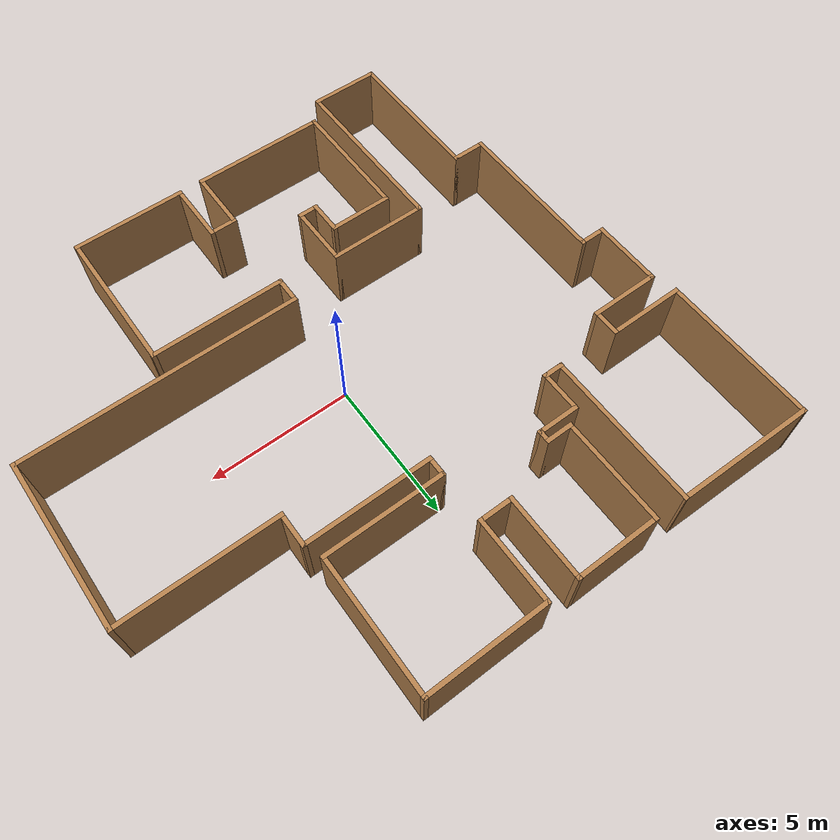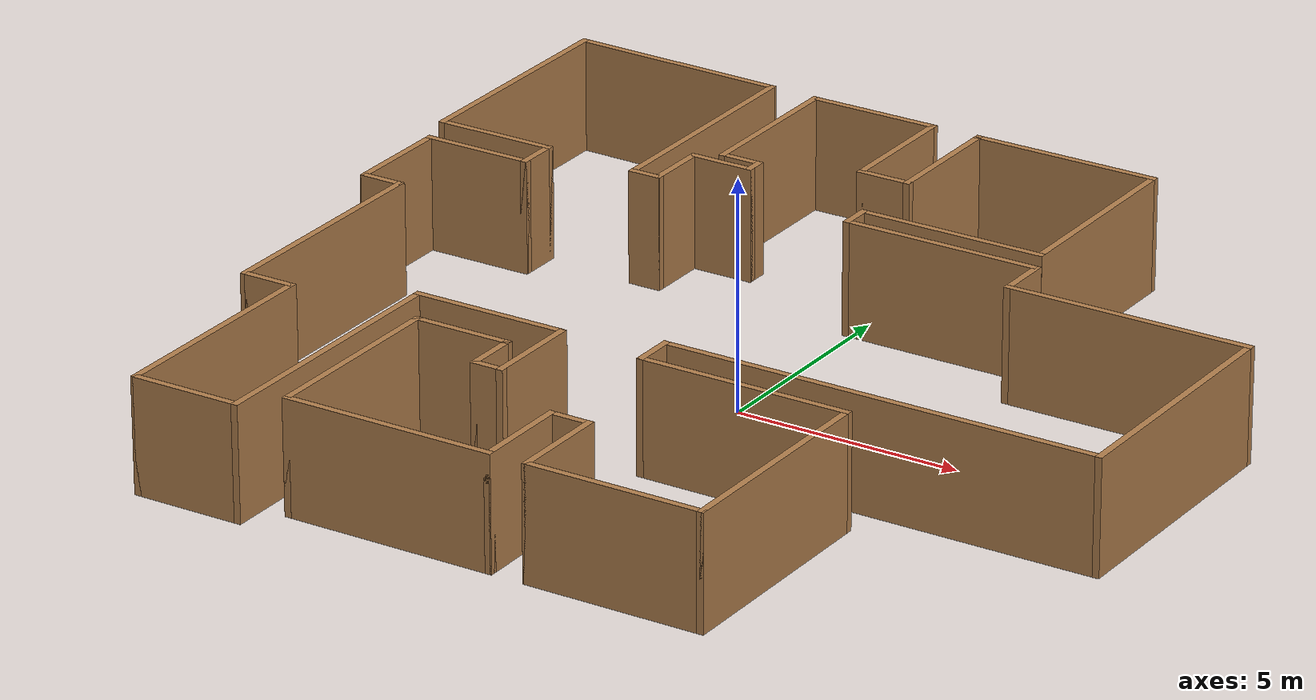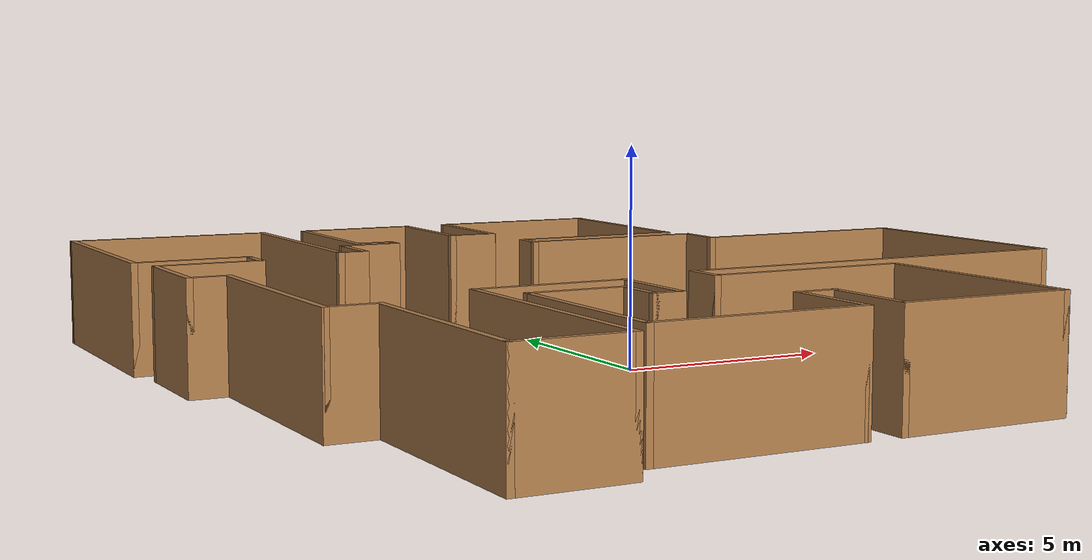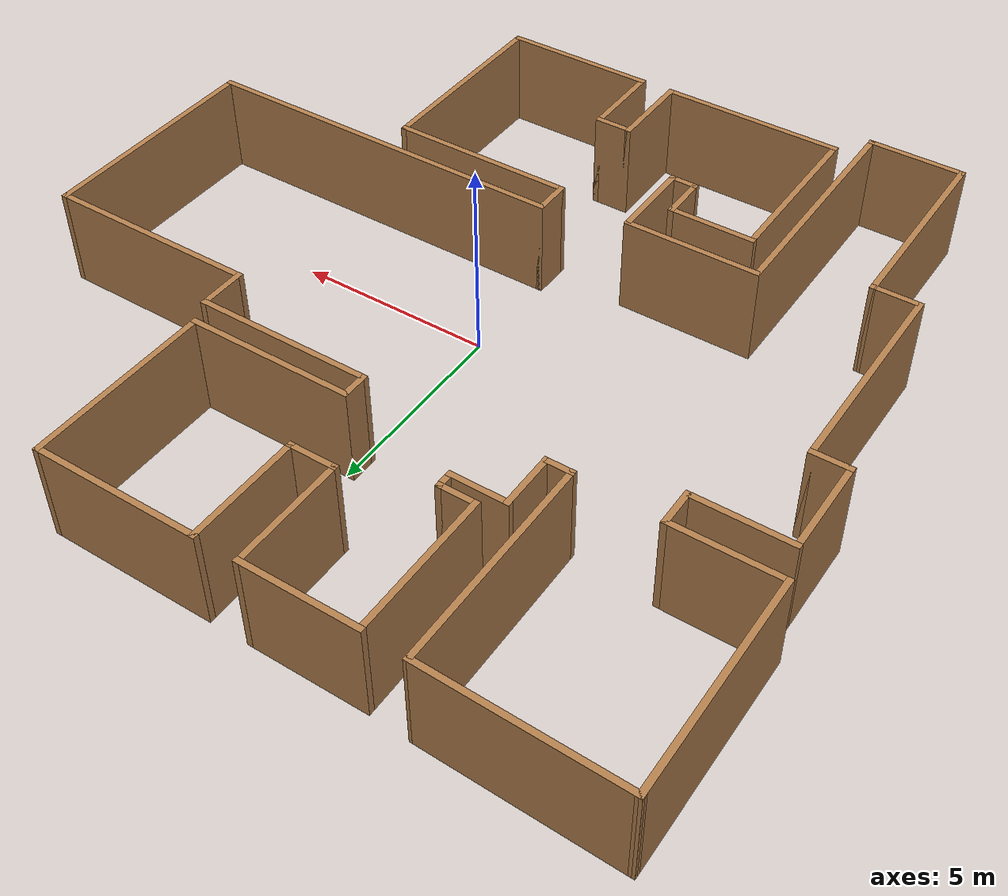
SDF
<?xml version='1.0'?>
<sdf version='1.6'>
  <model name='map_140'>
    <pose frame=''>-0.180736 0.201498 0 0 -0 0</pose>
    <link name='Wall_10'>
      <collision name='Wall_10_Collision'>
        <geometry>
          <box>
            <size>2.5 0.15 2.5</size>
          </box>
        </geometry>
        <pose frame=''>0 0 1.25 0 -0 0</pose>
      </collision>
      <visual name='Wall_10_Visual'>
        <pose frame=''>0 0 1.25 0 -0 0</pose>
        <geometry>
          <box>
            <size>2.5 0.15 2.5</size>
          </box>
        </geometry>
        <material>
          <script>
            <uri>file://media/materials/scripts/gazebo.material</uri>
            <name>Gazebo/Wood</name>
          </script>
          <ambient>1 1 1 1</ambient>
        </material>
        <meta>
          <layer>0</layer>
        </meta>
      </visual>
      <pose frame=''>-9.49922 2.12422 0 0 -0 -1.5708</pose>
    </link>
    <link name='Wall_11'>
      <collision name='Wall_11_Collision'>
        <geometry>
          <box>
            <size>1 0.15 2.5</size>
          </box>
        </geometry>
        <pose frame=''>0 0 1.25 0 -0 0</pose>
      </collision>
      <visual name='Wall_11_Visual'>
        <pose frame=''>0 0 1.25 0 -0 0</pose>
        <geometry>
          <box>
            <size>1 0.15 2.5</size>
          </box>
        </geometry>
        <material>
          <script>
            <uri>file://media/materials/scripts/gazebo.material</uri>
            <name>Gazebo/Wood</name>
          </script>
          <ambient>1 1 1 1</ambient>
        </material>
        <meta>
          <layer>0</layer>
        </meta>
      </visual>
      <pose frame=''>-9.07422 0.949219 0 0 -0 0</pose>
    </link>
    <link name='Wall_12'>
      <collision name='Wall_12_Collision'>
        <geometry>
          <box>
            <size>5.5 0.15 2.5</size>
          </box>
        </geometry>
        <pose frame=''>0 0 1.25 0 -0 0</pose>
      </collision>
      <visual name='Wall_12_Visual'>
        <pose frame=''>0 0 1.25 0 -0 0</pose>
        <geometry>
          <box>
            <size>5.5 0.15 2.5</size>
          </box>
        </geometry>
        <material>
          <script>
            <uri>file://media/materials/scripts/gazebo.material</uri>
            <name>Gazebo/Wood</name>
          </script>
          <ambient>1 1 1 1</ambient>
        </material>
        <meta>
          <layer>0</layer>
        </meta>
      </visual>
      <pose frame=''>-8.64922 -1.72578 0 0 -0 -1.5708</pose>
    </link>
    <link name='Wall_13'>
      <collision name='Wall_13_Collision'>
        <geometry>
          <box>
            <size>1.25 0.15 2.5</size>
          </box>
        </geometry>
        <pose frame=''>0 0 1.25 0 -0 0</pose>
      </collision>
      <visual name='Wall_13_Visual'>
        <pose frame=''>0 0 1.25 0 -0 0</pose>
        <geometry>
          <box>
            <size>1.25 0.15 2.5</size>
          </box>
        </geometry>
        <material>
          <script>
            <uri>file://media/materials/scripts/gazebo.material</uri>
            <name>Gazebo/Wood</name>
          </script>
          <ambient>1 1 1 1</ambient>
        </material>
        <meta>
          <layer>0</layer>
        </meta>
      </visual>
      <pose frame=''>-8.09922 -4.40078 0 0 -0 0</pose>
    </link>
    <link name='Wall_14'>
      <collision name='Wall_14_Collision'>
        <geometry>
          <box>
            <size>5.25 0.15 2.5</size>
          </box>
        </geometry>
        <pose frame=''>0 0 1.25 0 -0 0</pose>
      </collision>
      <visual name='Wall_14_Visual'>
        <pose frame=''>0 0 1.25 0 -0 0</pose>
        <geometry>
          <box>
            <size>5.25 0.15 2.5</size>
          </box>
        </geometry>
        <material>
          <script>
            <uri>file://media/materials/scripts/gazebo.material</uri>
            <name>Gazebo/Wood</name>
          </script>
          <ambient>1 1 1 1</ambient>
        </material>
        <meta>
          <layer>0</layer>
        </meta>
      </visual>
      <pose frame=''>-7.54922 -6.95078 0 0 -0 -1.5708</pose>
    </link>
    <link name='Wall_15'>
      <collision name='Wall_15_Collision'>
        <geometry>
          <box>
            <size>2.5 0.15 2.5</size>
          </box>
        </geometry>
        <pose frame=''>0 0 1.25 0 -0 0</pose>
      </collision>
      <visual name='Wall_15_Visual'>
        <pose frame=''>0 0 1.25 0 -0 0</pose>
        <geometry>
          <box>
            <size>2.5 0.15 2.5</size>
          </box>
        </geometry>
        <material>
          <script>
            <uri>file://media/materials/scripts/gazebo.material</uri>
            <name>Gazebo/Wood</name>
          </script>
          <ambient>1 1 1 1</ambient>
        </material>
        <meta>
          <layer>0</layer>
        </meta>
      </visual>
      <pose frame=''>-6.37422 -9.50078 0 0 -0 0</pose>
    </link>
    <link name='Wall_18'>
      <collision name='Wall_18_Collision'>
        <geometry>
          <box>
            <size>6.25 0.15 2.5</size>
          </box>
        </geometry>
        <pose frame=''>0 0 1.25 0 -0 0</pose>
      </collision>
      <visual name='Wall_18_Visual'>
        <pose frame=''>0 0 1.25 0 -0 0</pose>
        <geometry>
          <box>
            <size>6.25 0.15 2.5</size>
          </box>
        </geometry>
        <material>
          <script>
            <uri>file://media/materials/scripts/gazebo.material</uri>
            <name>Gazebo/Wood</name>
          </script>
          <ambient>1 1 1 1</ambient>
        </material>
        <meta>
          <layer>0</layer>
        </meta>
      </visual>
      <pose frame=''>-5.19922 -6.45078 0 0 -0 1.5708</pose>
    </link>
    <link name='Wall_21'>
      <collision name='Wall_21_Collision'>
        <geometry>
          <box>
            <size>3.5 0.15 2.5</size>
          </box>
        </geometry>
        <pose frame=''>0 0 1.25 0 -0 0</pose>
      </collision>
      <visual name='Wall_21_Visual'>
        <pose frame=''>0 0 1.25 0 -0 0</pose>
        <geometry>
          <box>
            <size>3.5 0.15 2.5</size>
          </box>
        </geometry>
        <material>
          <script>
            <uri>file://media/materials/scripts/gazebo.material</uri>
            <name>Gazebo/Wood</name>
          </script>
          <ambient>1 1 1 1</ambient>
        </material>
        <meta>
          <layer>0</layer>
        </meta>
      </visual>
      <pose frame=''>-3.52422 -3.40078 0 0 -0 0</pose>
    </link>
    <link name='Wall_22'>
      <collision name='Wall_22_Collision'>
        <geometry>
          <box>
            <size>2.25 0.15 2.5</size>
          </box>
        </geometry>
        <pose frame=''>0 0 1.25 0 -0 0</pose>
      </collision>
      <visual name='Wall_22_Visual'>
        <pose frame=''>0 0 1.25 0 -0 0</pose>
        <geometry>
          <box>
            <size>2.25 0.15 2.5</size>
          </box>
        </geometry>
        <material>
          <script>
            <uri>file://media/materials/scripts/gazebo.material</uri>
            <name>Gazebo/Wood</name>
          </script>
          <ambient>1 1 1 1</ambient>
        </material>
        <meta>
          <layer>0</layer>
        </meta>
      </visual>
      <pose frame=''>-1.84922 -4.45078 0 0 -0 -1.5708</pose>
    </link>
    <link name='Wall_23'>
      <collision name='Wall_23_Collision'>
        <geometry>
          <box>
            <size>0.75 0.15 2.5</size>
          </box>
        </geometry>
        <pose frame=''>0 0 1.25 0 -0 0</pose>
      </collision>
      <visual name='Wall_23_Visual'>
        <pose frame=''>0 0 1.25 0 -0 0</pose>
        <geometry>
          <box>
            <size>0.75 0.15 2.5</size>
          </box>
        </geometry>
        <material>
          <script>
            <uri>file://media/materials/scripts/gazebo.material</uri>
            <name>Gazebo/Wood</name>
          </script>
          <ambient>1 1 1 1</ambient>
        </material>
        <meta>
          <layer>0</layer>
        </meta>
      </visual>
      <pose frame=''>-2.14922 -5.50078 0 0 -0 3.14159</pose>
    </link>
    <link name='Wall_24'>
      <collision name='Wall_24_Collision'>
        <geometry>
          <box>
            <size>1.25 0.15 2.5</size>
          </box>
        </geometry>
        <pose frame=''>0 0 1.25 0 -0 0</pose>
      </collision>
      <visual name='Wall_24_Visual'>
        <pose frame=''>0 0 1.25 0 -0 0</pose>
        <geometry>
          <box>
            <size>1.25 0.15 2.5</size>
          </box>
        </geometry>
        <material>
          <script>
            <uri>file://media/materials/scripts/gazebo.material</uri>
            <name>Gazebo/Wood</name>
          </script>
          <ambient>1 1 1 1</ambient>
        </material>
        <meta>
          <layer>0</layer>
        </meta>
      </visual>
      <pose frame=''>-2.44922 -4.95078 0 0 -0 1.5708</pose>
    </link>
    <link name='Wall_25'>
      <collision name='Wall_25_Collision'>
        <geometry>
          <box>
            <size>2.25 0.15 2.5</size>
          </box>
        </geometry>
        <pose frame=''>0 0 1.25 0 -0 0</pose>
      </collision>
      <visual name='Wall_25_Visual'>
        <pose frame=''>0 0 1.25 0 -0 0</pose>
        <geometry>
          <box>
            <size>2.25 0.15 2.5</size>
          </box>
        </geometry>
        <material>
          <script>
            <uri>file://media/materials/scripts/gazebo.material</uri>
            <name>Gazebo/Wood</name>
          </script>
          <ambient>1 1 1 1</ambient>
        </material>
        <meta>
          <layer>0</layer>
        </meta>
      </visual>
      <pose frame=''>-3.49922 -4.40078 0 0 -0 3.14159</pose>
    </link>
    <link name='Wall_26'>
      <collision name='Wall_26_Collision'>
        <geometry>
          <box>
            <size>4.5 0.15 2.5</size>
          </box>
        </geometry>
        <pose frame=''>0 0 1.25 0 -0 0</pose>
      </collision>
      <visual name='Wall_26_Visual'>
        <pose frame=''>0 0 1.25 0 -0 0</pose>
        <geometry>
          <box>
            <size>4.5 0.15 2.5</size>
          </box>
        </geometry>
        <material>
          <script>
            <uri>file://media/materials/scripts/gazebo.material</uri>
            <name>Gazebo/Wood</name>
          </script>
          <ambient>1 1 1 1</ambient>
        </material>
        <meta>
          <layer>0</layer>
        </meta>
      </visual>
      <pose frame=''>-4.54922 -6.57578 0 0 -0 -1.5708</pose>
    </link>
    <link name='Wall_27'>
      <collision name='Wall_27_Collision'>
        <geometry>
          <box>
            <size>4.75 0.15 2.5</size>
          </box>
        </geometry>
        <pose frame=''>0 0 1.25 0 -0 0</pose>
      </collision>
      <visual name='Wall_27_Visual'>
        <pose frame=''>0 0 1.25 0 -0 0</pose>
        <geometry>
          <box>
            <size>4.75 0.15 2.5</size>
          </box>
        </geometry>
        <material>
          <script>
            <uri>file://media/materials/scripts/gazebo.material</uri>
            <name>Gazebo/Wood</name>
          </script>
          <ambient>1 1 1 1</ambient>
        </material>
        <meta>
          <layer>0</layer>
        </meta>
      </visual>
      <pose frame=''>-2.24922 -8.75078 0 0 -0 0</pose>
    </link>
    <link name='Wall_28'>
      <collision name='Wall_28_Collision'>
        <geometry>
          <box>
            <size>2.25 0.15 2.5</size>
          </box>
        </geometry>
        <pose frame=''>0 0 1.25 0 -0 0</pose>
      </collision>
      <visual name='Wall_28_Visual'>
        <pose frame=''>0 0 1.25 0 -0 0</pose>
        <geometry>
          <box>
            <size>2.25 0.15 2.5</size>
          </box>
        </geometry>
        <material>
          <script>
            <uri>file://media/materials/scripts/gazebo.material</uri>
            <name>Gazebo/Wood</name>
          </script>
          <ambient>1 1 1 1</ambient>
        </material>
        <meta>
          <layer>0</layer>
        </meta>
      </visual>
      <pose frame=''>0.05078 -7.70078 0 0 -0 1.5708</pose>
    </link>
    <link name='Wall_29'>
      <collision name='Wall_29_Collision'>
        <geometry>
          <box>
            <size>1 0.15 2.5</size>
          </box>
        </geometry>
        <pose frame=''>0 0 1.25 0 -0 0</pose>
      </collision>
      <visual name='Wall_29_Visual'>
        <pose frame=''>0 0 1.25 0 -0 0</pose>
        <geometry>
          <box>
            <size>1 0.15 2.5</size>
          </box>
        </geometry>
        <material>
          <script>
            <uri>file://media/materials/scripts/gazebo.material</uri>
            <name>Gazebo/Wood</name>
          </script>
          <ambient>1 1 1 1</ambient>
        </material>
        <meta>
          <layer>0</layer>
        </meta>
      </visual>
      <pose frame=''>0.47578 -6.65078 0 0 -0 0</pose>
    </link>
    <link name='Wall_30'>
      <collision name='Wall_30_Collision'>
        <geometry>
          <box>
            <size>2.25 0.15 2.5</size>
          </box>
        </geometry>
        <pose frame=''>0 0 1.25 0 -0 0</pose>
      </collision>
      <visual name='Wall_30_Visual'>
        <pose frame=''>0 0 1.25 0 -0 0</pose>
        <geometry>
          <box>
            <size>2.25 0.15 2.5</size>
          </box>
        </geometry>
        <material>
          <script>
            <uri>file://media/materials/scripts/gazebo.material</uri>
            <name>Gazebo/Wood</name>
          </script>
          <ambient>1 1 1 1</ambient>
        </material>
        <meta>
          <layer>0</layer>
        </meta>
      </visual>
      <pose frame=''>0.90078 -7.70078 0 0 -0 -1.5708</pose>
    </link>
    <link name='Wall_31'>
      <collision name='Wall_31_Collision'>
        <geometry>
          <box>
            <size>4 0.15 2.5</size>
          </box>
        </geometry>
        <pose frame=''>0 0 1.25 0 -0 0</pose>
      </collision>
      <visual name='Wall_31_Visual'>
        <pose frame=''>0 0 1.25 0 -0 0</pose>
        <geometry>
          <box>
            <size>4 0.15 2.5</size>
          </box>
        </geometry>
        <material>
          <script>
            <uri>file://media/materials/scripts/gazebo.material</uri>
            <name>Gazebo/Wood</name>
          </script>
          <ambient>1 1 1 1</ambient>
        </material>
        <meta>
          <layer>0</layer>
        </meta>
      </visual>
      <pose frame=''>2.82578 -8.75078 0 0 -0 0</pose>
    </link>
    <link name='Wall_32'>
      <collision name='Wall_32_Collision'>
        <geometry>
          <box>
            <size>5.25 0.15 2.5</size>
          </box>
        </geometry>
        <pose frame=''>0 0 1.25 0 -0 0</pose>
      </collision>
      <visual name='Wall_32_Visual'>
        <pose frame=''>0 0 1.25 0 -0 0</pose>
        <geometry>
          <box>
            <size>5.25 0.15 2.5</size>
          </box>
        </geometry>
        <material>
          <script>
            <uri>file://media/materials/scripts/gazebo.material</uri>
            <name>Gazebo/Wood</name>
          </script>
          <ambient>1 1 1 1</ambient>
        </material>
        <meta>
          <layer>0</layer>
        </meta>
      </visual>
      <pose frame=''>4.75078 -6.20078 0 0 -0 1.5708</pose>
    </link>
    <link name='Wall_33'>
      <collision name='Wall_33_Collision'>
        <geometry>
          <box>
            <size>4.75 0.15 2.5</size>
          </box>
        </geometry>
        <pose frame=''>0 0 1.25 0 -0 0</pose>
      </collision>
      <visual name='Wall_33_Visual'>
        <pose frame=''>0 0 1.25 0 -0 0</pose>
        <geometry>
          <box>
            <size>4.75 0.15 2.5</size>
          </box>
        </geometry>
        <material>
          <script>
            <uri>file://media/materials/scripts/gazebo.material</uri>
            <name>Gazebo/Wood</name>
          </script>
          <ambient>1 1 1 1</ambient>
        </material>
        <meta>
          <layer>0</layer>
        </meta>
      </visual>
      <pose frame=''>2.45078 -3.65078 0 0 -0 3.14159</pose>
    </link>
    <link name='Wall_34'>
      <collision name='Wall_34_Collision'>
        <geometry>
          <box>
            <size>1 0.15 2.5</size>
          </box>
        </geometry>
        <pose frame=''>0 0 1.25 0 -0 0</pose>
      </collision>
      <visual name='Wall_34_Visual'>
        <pose frame=''>0 0 1.25 0 -0 0</pose>
        <geometry>
          <box>
            <size>1 0.15 2.5</size>
          </box>
        </geometry>
        <material>
          <script>
            <uri>file://media/materials/scripts/gazebo.material</uri>
            <name>Gazebo/Wood</name>
          </script>
          <ambient>1 1 1 1</ambient>
        </material>
        <meta>
          <layer>0</layer>
        </meta>
      </visual>
      <pose frame=''>0.15078 -3.22578 0 0 -0 1.5708</pose>
    </link>
    <link name='Wall_35'>
      <collision name='Wall_35_Collision'>
        <geometry>
          <box>
            <size>9.75 0.15 2.5</size>
          </box>
        </geometry>
        <pose frame=''>0 0 1.25 0 -0 0</pose>
      </collision>
      <visual name='Wall_35_Visual'>
        <pose frame=''>0 0 1.25 0 -0 0</pose>
        <geometry>
          <box>
            <size>9.75 0.15 2.5</size>
          </box>
        </geometry>
        <material>
          <script>
            <uri>file://media/materials/scripts/gazebo.material</uri>
            <name>Gazebo/Wood</name>
          </script>
          <ambient>1 1 1 1</ambient>
        </material>
        <meta>
          <layer>0</layer>
        </meta>
      </visual>
      <pose frame=''>4.95078 -2.80078 0 0 -0 0</pose>
    </link>
    <link name='Wall_37'>
      <collision name='Wall_37_Collision'>
        <geometry>
          <box>
            <size>6 0.15 2.5</size>
          </box>
        </geometry>
        <pose frame=''>0 0 1.25 0 -0 0</pose>
      </collision>
      <visual name='Wall_37_Visual'>
        <pose frame=''>0 0 1.25 0 -0 0</pose>
        <geometry>
          <box>
            <size>6 0.15 2.5</size>
          </box>
        </geometry>
        <material>
          <script>
            <uri>file://media/materials/scripts/gazebo.material</uri>
            <name>Gazebo/Wood</name>
          </script>
          <ambient>1 1 1 1</ambient>
        </material>
        <meta>
          <layer>0</layer>
        </meta>
      </visual>
      <pose frame=''>9.75078 0.124219 0 0 -0 1.5708</pose>
    </link>
    <link name='Wall_41'>
      <collision name='Wall_41_Collision'>
        <geometry>
          <box>
            <size>5.5 0.15 2.5</size>
          </box>
        </geometry>
        <pose frame=''>0 0 1.25 0 -0 0</pose>
      </collision>
      <visual name='Wall_41_Visual'>
        <pose frame=''>0 0 1.25 0 -0 0</pose>
        <geometry>
          <box>
            <size>5.5 0.15 2.5</size>
          </box>
        </geometry>
        <material>
          <script>
            <uri>file://media/materials/scripts/gazebo.material</uri>
            <name>Gazebo/Wood</name>
          </script>
          <ambient>1 1 1 1</ambient>
        </material>
        <meta>
          <layer>0</layer>
        </meta>
      </visual>
      <pose frame=''>7.07578 3.04922 0 0 -0 3.14159</pose>
    </link>
    <link name='Wall_42'>
      <collision name='Wall_42_Collision'>
        <geometry>
          <box>
            <size>1.25 0.15 2.5</size>
          </box>
        </geometry>
        <pose frame=''>0 0 1.25 0 -0 0</pose>
      </collision>
      <visual name='Wall_42_Visual'>
        <pose frame=''>0 0 1.25 0 -0 0</pose>
        <geometry>
          <box>
            <size>1.25 0.15 2.5</size>
          </box>
        </geometry>
        <material>
          <script>
            <uri>file://media/materials/scripts/gazebo.material</uri>
            <name>Gazebo/Wood</name>
          </script>
          <ambient>1 1 1 1</ambient>
        </material>
        <meta>
          <layer>0</layer>
        </meta>
      </visual>
      <pose frame=''>4.40078 3.59922 0 0 -0 1.5708</pose>
    </link>
    <link name='Wall_43'>
      <collision name='Wall_43_Collision'>
        <geometry>
          <box>
            <size>4.5 0.15 2.5</size>
          </box>
        </geometry>
        <pose frame=''>0 0 1.25 0 -0 0</pose>
      </collision>
      <visual name='Wall_43_Visual'>
        <pose frame=''>0 0 1.25 0 -0 0</pose>
        <geometry>
          <box>
            <size>4.5 0.15 2.5</size>
          </box>
        </geometry>
        <material>
          <script>
            <uri>file://media/materials/scripts/gazebo.material</uri>
            <name>Gazebo/Wood</name>
          </script>
          <ambient>1 1 1 1</ambient>
        </material>
        <meta>
          <layer>0</layer>
        </meta>
      </visual>
      <pose frame=''>2.22578 4.14922 0 0 -0 3.14159</pose>
    </link>
    <link name='Wall_44'>
      <collision name='Wall_44_Collision'>
        <geometry>
          <box>
            <size>0.75 0.15 2.5</size>
          </box>
        </geometry>
        <pose frame=''>0 0 1.25 0 -0 0</pose>
      </collision>
      <visual name='Wall_44_Visual'>
        <pose frame=''>0 0 1.25 0 -0 0</pose>
        <geometry>
          <box>
            <size>0.75 0.15 2.5</size>
          </box>
        </geometry>
        <material>
          <script>
            <uri>file://media/materials/scripts/gazebo.material</uri>
            <name>Gazebo/Wood</name>
          </script>
          <ambient>1 1 1 1</ambient>
        </material>
        <meta>
          <layer>0</layer>
        </meta>
      </visual>
      <pose frame=''>0.05078 4.44922 0 0 -0 1.5708</pose>
    </link>
    <link name='Wall_45'>
      <collision name='Wall_45_Collision'>
        <geometry>
          <box>
            <size>4.25 0.15 2.5</size>
          </box>
        </geometry>
        <pose frame=''>0 0 1.25 0 -0 0</pose>
      </collision>
      <visual name='Wall_45_Visual'>
        <pose frame=''>0 0 1.25 0 -0 0</pose>
        <geometry>
          <box>
            <size>4.25 0.15 2.5</size>
          </box>
        </geometry>
        <material>
          <script>
            <uri>file://media/materials/scripts/gazebo.material</uri>
            <name>Gazebo/Wood</name>
          </script>
          <ambient>1 1 1 1</ambient>
        </material>
        <meta>
          <layer>0</layer>
        </meta>
      </visual>
      <pose frame=''>2.10078 4.74922 0 0 -0 0</pose>
    </link>
    <link name='Wall_46'>
      <collision name='Wall_46_Collision'>
        <geometry>
          <box>
            <size>4.75 0.15 2.5</size>
          </box>
        </geometry>
        <pose frame=''>0 0 1.25 0 -0 0</pose>
      </collision>
      <visual name='Wall_46_Visual'>
        <pose frame=''>0 0 1.25 0 -0 0</pose>
        <geometry>
          <box>
            <size>4.75 0.15 2.5</size>
          </box>
        </geometry>
        <material>
          <script>
            <uri>file://media/materials/scripts/gazebo.material</uri>
            <name>Gazebo/Wood</name>
          </script>
          <ambient>1 1 1 1</ambient>
        </material>
        <meta>
          <layer>0</layer>
        </meta>
      </visual>
      <pose frame=''>4.15078 7.04922 0 0 -0 1.5708</pose>
    </link>
    <link name='Wall_47'>
      <collision name='Wall_47_Collision'>
        <geometry>
          <box>
            <size>4.25 0.15 2.5</size>
          </box>
        </geometry>
        <pose frame=''>0 0 1.25 0 -0 0</pose>
      </collision>
      <visual name='Wall_47_Visual'>
        <pose frame=''>0 0 1.25 0 -0 0</pose>
        <geometry>
          <box>
            <size>4.25 0.15 2.5</size>
          </box>
        </geometry>
        <material>
          <script>
            <uri>file://media/materials/scripts/gazebo.material</uri>
            <name>Gazebo/Wood</name>
          </script>
          <ambient>1 1 1 1</ambient>
        </material>
        <meta>
          <layer>0</layer>
        </meta>
      </visual>
      <pose frame=''>2.10078 9.34922 0 0 -0 3.14159</pose>
    </link>
    <link name='Wall_48'>
      <collision name='Wall_48_Collision'>
        <geometry>
          <box>
            <size>3 0.15 2.5</size>
          </box>
        </geometry>
        <pose frame=''>0 0 1.25 0 -0 0</pose>
      </collision>
      <visual name='Wall_48_Visual'>
        <pose frame=''>0 0 1.25 0 -0 0</pose>
        <geometry>
          <box>
            <size>3 0.15 2.5</size>
          </box>
        </geometry>
        <material>
          <script>
            <uri>file://media/materials/scripts/gazebo.material</uri>
            <name>Gazebo/Wood</name>
          </script>
          <ambient>1 1 1 1</ambient>
        </material>
        <meta>
          <layer>0</layer>
        </meta>
      </visual>
      <pose frame=''>0.05078 7.92422 0 0 -0 -1.5708</pose>
    </link>
    <link name='Wall_51'>
      <collision name='Wall_51_Collision'>
        <geometry>
          <box>
            <size>1.25 0.15 2.5</size>
          </box>
        </geometry>
        <pose frame=''>0 0 1.25 0 -0 0</pose>
      </collision>
      <visual name='Wall_51_Visual'>
        <pose frame=''>0 0 1.25 0 -0 0</pose>
        <geometry>
          <box>
            <size>1.25 0.15 2.5</size>
          </box>
        </geometry>
        <material>
          <script>
            <uri>file://media/materials/scripts/gazebo.material</uri>
            <name>Gazebo/Wood</name>
          </script>
          <ambient>1 1 1 1</ambient>
        </material>
        <meta>
          <layer>0</layer>
        </meta>
      </visual>
      <pose frame=''>-0.49922 6.49922 0 0 -0 3.14159</pose>
    </link>
    <link name='Wall_52'>
      <collision name='Wall_52_Collision'>
        <geometry>
          <box>
            <size>3 0.15 2.5</size>
          </box>
        </geometry>
        <pose frame=''>0 0 1.25 0 -0 0</pose>
      </collision>
      <visual name='Wall_52_Visual'>
        <pose frame=''>0 0 1.25 0 -0 0</pose>
        <geometry>
          <box>
            <size>3 0.15 2.5</size>
          </box>
        </geometry>
        <material>
          <script>
            <uri>file://media/materials/scripts/gazebo.material</uri>
            <name>Gazebo/Wood</name>
          </script>
          <ambient>1 1 1 1</ambient>
        </material>
        <meta>
          <layer>0</layer>
        </meta>
      </visual>
      <pose frame=''>-1.04922 7.92422 0 0 -0 1.5708</pose>
    </link>
    <link name='Wall_53'>
      <collision name='Wall_53_Collision'>
        <geometry>
          <box>
            <size>3 0.15 2.5</size>
          </box>
        </geometry>
        <pose frame=''>0 0 1.25 0 -0 0</pose>
      </collision>
      <visual name='Wall_53_Visual'>
        <pose frame=''>0 0 1.25 0 -0 0</pose>
        <geometry>
          <box>
            <size>3 0.15 2.5</size>
          </box>
        </geometry>
        <material>
          <script>
            <uri>file://media/materials/scripts/gazebo.material</uri>
            <name>Gazebo/Wood</name>
          </script>
          <ambient>1 1 1 1</ambient>
        </material>
        <meta>
          <layer>0</layer>
        </meta>
      </visual>
      <pose frame=''>-2.47422 9.34922 0 0 -0 3.14159</pose>
    </link>
    <link name='Wall_54'>
      <collision name='Wall_54_Collision'>
        <geometry>
          <box>
            <size>3.75 0.15 2.5</size>
          </box>
        </geometry>
        <pose frame=''>0 0 1.25 0 -0 0</pose>
      </collision>
      <visual name='Wall_54_Visual'>
        <pose frame=''>0 0 1.25 0 -0 0</pose>
        <geometry>
          <box>
            <size>3.75 0.15 2.5</size>
          </box>
        </geometry>
        <material>
          <script>
            <uri>file://media/materials/scripts/gazebo.material</uri>
            <name>Gazebo/Wood</name>
          </script>
          <ambient>1 1 1 1</ambient>
        </material>
        <meta>
          <layer>0</layer>
        </meta>
      </visual>
      <pose frame=''>-3.89922 7.54922 0 0 -0 -1.5708</pose>
    </link>
    <link name='Wall_55'>
      <collision name='Wall_55_Collision'>
        <geometry>
          <box>
            <size>1 0.15 2.5</size>
          </box>
        </geometry>
        <pose frame=''>0 0 1.25 0 -0 0</pose>
      </collision>
      <visual name='Wall_55_Visual'>
        <pose frame=''>0 0 1.25 0 -0 0</pose>
        <geometry>
          <box>
            <size>1 0.15 2.5</size>
          </box>
        </geometry>
        <material>
          <script>
            <uri>file://media/materials/scripts/gazebo.material</uri>
            <name>Gazebo/Wood</name>
          </script>
          <ambient>1 1 1 1</ambient>
        </material>
        <meta>
          <layer>0</layer>
        </meta>
      </visual>
      <pose frame=''>-3.47422 5.74922 0 0 -0 0</pose>
    </link>
    <link name='Wall_56'>
      <collision name='Wall_56_Collision'>
        <geometry>
          <box>
            <size>0.5 0.15 2.5</size>
          </box>
        </geometry>
        <pose frame=''>0 0 1.25 0 -0 0</pose>
      </collision>
      <visual name='Wall_56_Visual'>
        <pose frame=''>0 0 1.25 0 -0 0</pose>
        <geometry>
          <box>
            <size>0.5 0.15 2.5</size>
          </box>
        </geometry>
        <material>
          <script>
            <uri>file://media/materials/scripts/gazebo.material</uri>
            <name>Gazebo/Wood</name>
          </script>
          <ambient>1 1 1 1</ambient>
        </material>
        <meta>
          <layer>0</layer>
        </meta>
      </visual>
      <pose frame=''>-3.04922 5.57422 0 0 -0 -1.5708</pose>
    </link>
    <link name='Wall_57'>
      <collision name='Wall_57_Collision'>
        <geometry>
          <box>
            <size>1.5 0.15 2.5</size>
          </box>
        </geometry>
        <pose frame=''>0 0 1.25 0 -0 0</pose>
      </collision>
      <visual name='Wall_57_Visual'>
        <pose frame=''>0 0 1.25 0 -0 0</pose>
        <geometry>
          <box>
            <size>1.5 0.15 2.5</size>
          </box>
        </geometry>
        <material>
          <script>
            <uri>file://media/materials/scripts/gazebo.material</uri>
            <name>Gazebo/Wood</name>
          </script>
          <ambient>1 1 1 1</ambient>
        </material>
        <meta>
          <layer>0</layer>
        </meta>
      </visual>
      <pose frame=''>-3.72422 5.39922 0 0 -0 3.14159</pose>
    </link>
    <link name='Wall_58'>
      <collision name='Wall_58_Collision'>
        <geometry>
          <box>
            <size>1.5 0.15 2.5</size>
          </box>
        </geometry>
        <pose frame=''>0 0 1.25 0 -0 0</pose>
      </collision>
      <visual name='Wall_58_Visual'>
        <pose frame=''>0 0 1.25 0 -0 0</pose>
        <geometry>
          <box>
            <size>1.5 0.15 2.5</size>
          </box>
        </geometry>
        <material>
          <script>
            <uri>file://media/materials/scripts/gazebo.material</uri>
            <name>Gazebo/Wood</name>
          </script>
          <ambient>1 1 1 1</ambient>
        </material>
        <meta>
          <layer>0</layer>
        </meta>
      </visual>
      <pose frame=''>-4.39922 4.72422 0 0 -0 -1.5708</pose>
    </link>
    <link name='Wall_59'>
      <collision name='Wall_59_Collision'>
        <geometry>
          <box>
            <size>0.75 0.15 2.5</size>
          </box>
        </geometry>
        <pose frame=''>0 0 1.25 0 -0 0</pose>
      </collision>
      <visual name='Wall_59_Visual'>
        <pose frame=''>0 0 1.25 0 -0 0</pose>
        <geometry>
          <box>
            <size>0.75 0.15 2.5</size>
          </box>
        </geometry>
        <material>
          <script>
            <uri>file://media/materials/scripts/gazebo.material</uri>
            <name>Gazebo/Wood</name>
          </script>
          <ambient>1 1 1 1</ambient>
        </material>
        <meta>
          <layer>0</layer>
        </meta>
      </visual>
      <pose frame=''>-4.69922 4.04922 0 0 -0 3.14159</pose>
    </link>
    <link name='Wall_6'>
      <collision name='Wall_6_Collision'>
        <geometry>
          <box>
            <size>5.5 0.15 2.5</size>
          </box>
        </geometry>
        <pose frame=''>0 0 1.25 0 -0 0</pose>
      </collision>
      <visual name='Wall_6_Visual'>
        <pose frame=''>0 0 1.25 0 -0 0</pose>
        <geometry>
          <box>
            <size>5.5 0.15 2.5</size>
          </box>
        </geometry>
        <material>
          <script>
            <uri>file://media/materials/scripts/gazebo.material</uri>
            <name>Gazebo/Wood</name>
          </script>
          <ambient>1 1 1 1</ambient>
        </material>
        <meta>
          <layer>0</layer>
        </meta>
      </visual>
      <pose frame=''>-9.74922 6.82422 0 0 -0 -1.5708</pose>
    </link>
    <link name='Wall_60'>
      <collision name='Wall_60_Collision'>
        <geometry>
          <box>
            <size>5.5 0.15 2.5</size>
          </box>
        </geometry>
        <pose frame=''>0 0 1.25 0 -0 0</pose>
      </collision>
      <visual name='Wall_60_Visual'>
        <pose frame=''>0 0 1.25 0 -0 0</pose>
        <geometry>
          <box>
            <size>5.5 0.15 2.5</size>
          </box>
        </geometry>
        <material>
          <script>
            <uri>file://media/materials/scripts/gazebo.material</uri>
            <name>Gazebo/Wood</name>
          </script>
          <ambient>1 1 1 1</ambient>
        </material>
        <meta>
          <layer>0</layer>
        </meta>
      </visual>
      <pose frame=''>-4.99922 6.72422 0 0 -0 1.5708</pose>
    </link>
    <link name='Wall_62'>
      <collision name='Wall_62_Collision'>
        <geometry>
          <box>
            <size>4.90105 0.15 2.5</size>
          </box>
        </geometry>
        <pose frame=''>0 0 1.25 0 -0 0</pose>
      </collision>
      <visual name='Wall_62_Visual'>
        <pose frame=''>0 0 1.25 0 -0 0</pose>
        <geometry>
          <box>
            <size>4.90105 0.15 2.5</size>
          </box>
        </geometry>
        <material>
          <script>
            <uri>file://media/materials/scripts/gazebo.material</uri>
            <name>Gazebo/Wood</name>
          </script>
          <ambient>1 1 1 1</ambient>
        </material>
        <meta>
          <layer>0</layer>
        </meta>
      </visual>
      <pose frame=''>-7.37422 9.44922 0 0 -0 -0.02105</pose>
    </link>
    <link name='Wall_7'>
      <collision name='Wall_7_Collision'>
        <geometry>
          <box>
            <size>2.75 0.15 2.5</size>
          </box>
        </geometry>
        <pose frame=''>0 0 1.25 0 -0 0</pose>
      </collision>
      <visual name='Wall_7_Visual'>
        <pose frame=''>0 0 1.25 0 -0 0</pose>
        <geometry>
          <box>
            <size>2.75 0.15 2.5</size>
          </box>
        </geometry>
        <material>
          <script>
            <uri>file://media/materials/scripts/gazebo.material</uri>
            <name>Gazebo/Wood</name>
          </script>
          <ambient>1 1 1 1</ambient>
        </material>
        <meta>
          <layer>0</layer>
        </meta>
      </visual>
      <pose frame=''>-8.44922 4.14922 0 0 -0 0</pose>
    </link>
    <link name='Wall_8'>
      <collision name='Wall_8_Collision'>
        <geometry>
          <box>
            <size>1 0.15 2.5</size>
          </box>
        </geometry>
        <pose frame=''>0 0 1.25 0 -0 0</pose>
      </collision>
      <visual name='Wall_8_Visual'>
        <pose frame=''>0 0 1.25 0 -0 0</pose>
        <geometry>
          <box>
            <size>1 0.15 2.5</size>
          </box>
        </geometry>
        <material>
          <script>
            <uri>file://media/materials/scripts/gazebo.material</uri>
            <name>Gazebo/Wood</name>
          </script>
          <ambient>1 1 1 1</ambient>
        </material>
        <meta>
          <layer>0</layer>
        </meta>
      </visual>
      <pose frame=''>-7.14922 3.72422 0 0 -0 -1.5708</pose>
    </link>
    <link name='Wall_9'>
      <collision name='Wall_9_Collision'>
        <geometry>
          <box>
            <size>2.5 0.15 2.5</size>
          </box>
        </geometry>
        <pose frame=''>0 0 1.25 0 -0 0</pose>
      </collision>
      <visual name='Wall_9_Visual'>
        <pose frame=''>0 0 1.25 0 -0 0</pose>
        <geometry>
          <box>
            <size>2.5 0.15 2.5</size>
          </box>
        </geometry>
        <material>
          <script>
            <uri>file://media/materials/scripts/gazebo.material</uri>
            <name>Gazebo/Wood</name>
          </script>
          <ambient>1 1 1 1</ambient>
        </material>
        <meta>
          <layer>0</layer>
        </meta>
      </visual>
      <pose frame=''>-8.32422 3.29922 0 0 -0 3.14159</pose>
    </link>
    <static>1</static>
  </model>
</sdf>
